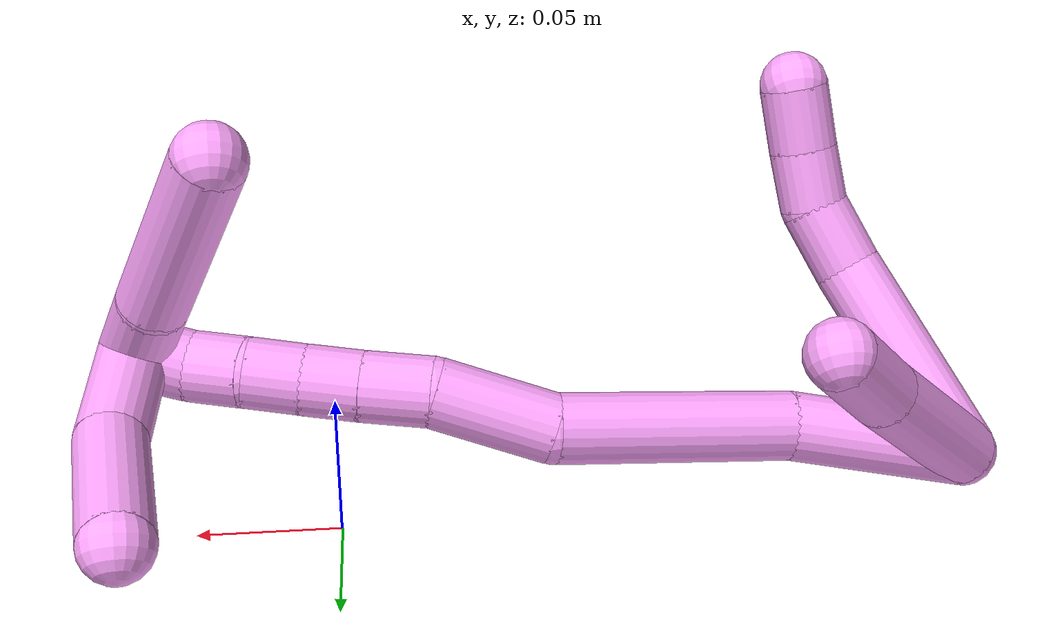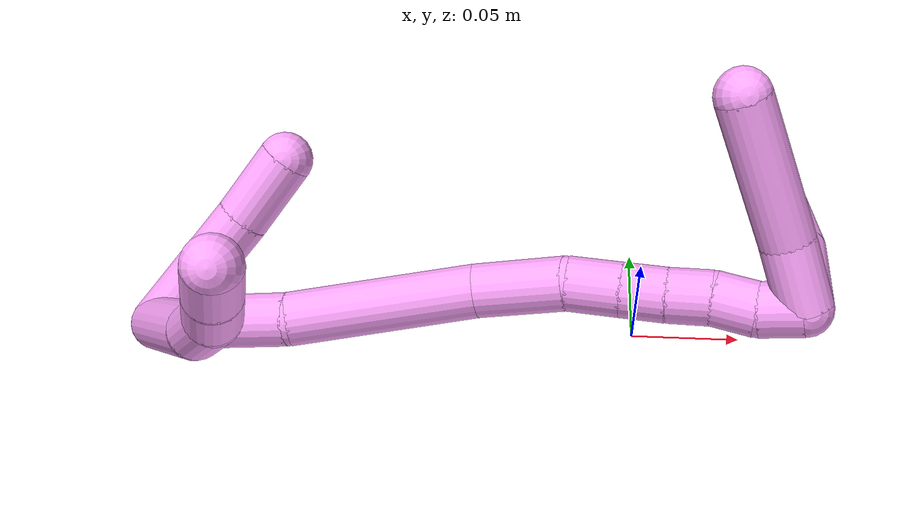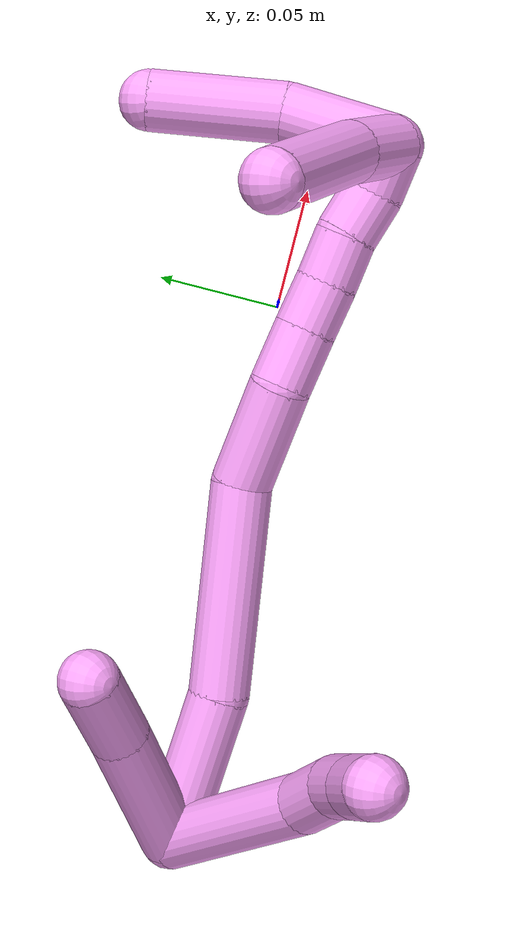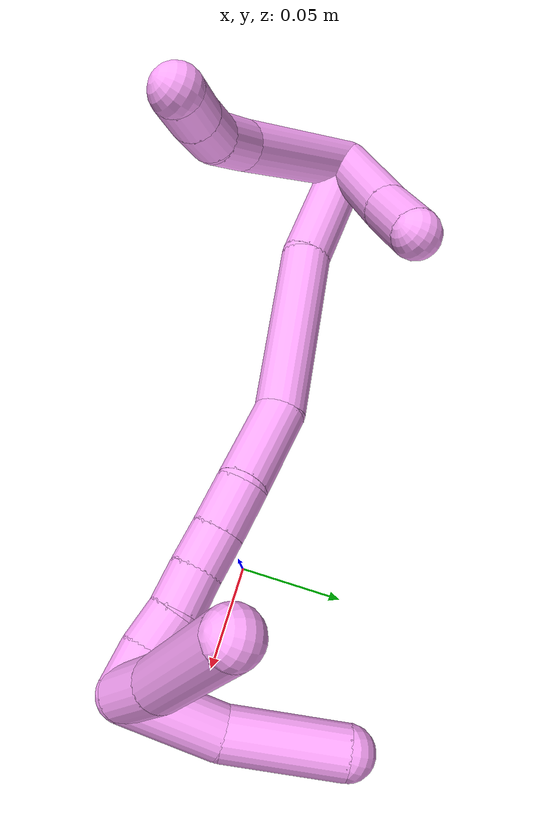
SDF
<sdf version="1.7">
 <world name="default">
  <model name="4">
   <static>0</static>
   <link name="4">
    <collision name="collision-cylinder-e_1_2_8">
     <pose>0.015557 0.003464 0.035913 -0.096155 0.407102 -0.019862</pose>
     <geometry><cylinder><radius>0.0125</radius><length>0.078581</length></cylinder></geometry>
     <surface>
      <friction><ode><mu>1.16</mu><mu2>1.16</mu2><slip1>0</slip1><slip2>0</slip2></ode></friction>
      <contact><ode><kp>1e+06</kp><kd>1</kd><max_vel>0</max_vel><min_depth>0.001</min_depth></ode></contact>
     </surface>
    </collision>
    <visual name="visual-cylinder-e_1_2_8">
     <pose>0.015557 0.003464 0.035913 -0.096155 0.407102 -0.019862</pose>
     <geometry><cylinder><radius>0.0125</radius><length>0.078581</length></cylinder></geometry>
     <material><ambient>1 0.65098 0.996078 1</ambient></material>
    </visual>
    <collision name="collision-cylinder-e_2_8_9">
     <pose>0.036786 0.01127 0.082731 -0.378896 0.450136 -0.087744</pose>
     <geometry><cylinder><radius>0.0125</radius><length>0.026074</length></cylinder></geometry>
     <surface>
      <friction><ode><mu>1.16</mu><mu2>1.16</mu2><slip1>0</slip1><slip2>0</slip2></ode></friction>
      <contact><ode><kp>1e+06</kp><kd>1</kd><max_vel>0</max_vel><min_depth>0.001</min_depth></ode></contact>
     </surface>
    </collision>
    <visual name="visual-cylinder-e_2_8_9">
     <pose>0.036786 0.01127 0.082731 -0.378896 0.450136 -0.087744</pose>
     <geometry><cylinder><radius>0.0125</radius><length>0.026074</length></cylinder></geometry>
     <material><ambient>1 0.65098 0.996078 1</ambient></material>
    </visual>
    <collision name="collision-cylinder-e_3_9_10">
     <pose>0.044397 0.021308 0.102794 -0.556454 0.177885 -0.050934</pose>
     <geometry><cylinder><radius>0.0125</radius><length>0.021915</length></cylinder></geometry>
     <surface>
      <friction><ode><mu>1.16</mu><mu2>1.16</mu2><slip1>0</slip1><slip2>0</slip2></ode></friction>
      <contact><ode><kp>1e+06</kp><kd>1</kd><max_vel>0</max_vel><min_depth>0.001</min_depth></ode></contact>
     </surface>
    </collision>
    <visual name="visual-cylinder-e_3_9_10">
     <pose>0.044397 0.021308 0.102794 -0.556454 0.177885 -0.050934</pose>
     <geometry><cylinder><radius>0.0125</radius><length>0.021915</length></cylinder></geometry>
     <material><ambient>1 0.65098 0.996078 1</ambient></material>
    </visual>
    <collision name="collision-cylinder-e_4_10_6">
     <pose>0.048281 0.033888 0.12123 -0.638332 0.166758 -0.055221</pose>
     <geometry><cylinder><radius>0.0125</radius><length>0.023431</length></cylinder></geometry>
     <surface>
      <friction><ode><mu>1.16</mu><mu2>1.16</mu2><slip1>0</slip1><slip2>0</slip2></ode></friction>
      <contact><ode><kp>1e+06</kp><kd>1</kd><max_vel>0</max_vel><min_depth>0.001</min_depth></ode></contact>
     </surface>
    </collision>
    <visual name="visual-cylinder-e_4_10_6">
     <pose>0.048281 0.033888 0.12123 -0.638332 0.166758 -0.055221</pose>
     <geometry><cylinder><radius>0.0125</radius><length>0.023431</length></cylinder></geometry>
     <material><ambient>1 0.65098 0.996078 1</ambient></material>
    </visual>
    <collision name="collision-cylinder-e_1_2_11">
     <pose>0.022093 0.024066 0.003744 -1.41645 0.736729 -0.638531</pose>
     <geometry><cylinder><radius>0.0125</radius><length>0.065765</length></cylinder></geometry>
     <surface>
      <friction><ode><mu>1.16</mu><mu2>1.16</mu2><slip1>0</slip1><slip2>0</slip2></ode></friction>
      <contact><ode><kp>1e+06</kp><kd>1</kd><max_vel>0</max_vel><min_depth>0.001</min_depth></ode></contact>
     </surface>
    </collision>
    <visual name="visual-cylinder-e_1_2_11">
     <pose>0.022093 0.024066 0.003744 -1.41645 0.736729 -0.638531</pose>
     <geometry><cylinder><radius>0.0125</radius><length>0.065765</length></cylinder></geometry>
     <material><ambient>1 0.65098 0.996078 1</ambient></material>
    </visual>
    <collision name="collision-cylinder-e_2_11_5">
     <pose>0.055071 0.061155 0.009702 -1.40244 0.68918 -0.588512</pose>
     <geometry><cylinder><radius>0.0125</radius><length>0.034235</length></cylinder></geometry>
     <surface>
      <friction><ode><mu>1.16</mu><mu2>1.16</mu2><slip1>0</slip1><slip2>0</slip2></ode></friction>
      <contact><ode><kp>1e+06</kp><kd>1</kd><max_vel>0</max_vel><min_depth>0.001</min_depth></ode></contact>
     </surface>
    </collision>
    <visual name="visual-cylinder-e_2_11_5">
     <pose>0.055071 0.061155 0.009702 -1.40244 0.68918 -0.588512</pose>
     <geometry><cylinder><radius>0.0125</radius><length>0.034235</length></cylinder></geometry>
     <material><ambient>1 0.65098 0.996078 1</ambient></material>
    </visual>
    <collision name="collision-cylinder-e_1_2_12">
     <pose>0.031466 0.000447 0.007155 -0.062407 1.34678 -0.049793</pose>
     <geometry><cylinder><radius>0.0125</radius><length>0.064546</length></cylinder></geometry>
     <surface>
      <friction><ode><mu>1.16</mu><mu2>1.16</mu2><slip1>0</slip1><slip2>0</slip2></ode></friction>
      <contact><ode><kp>1e+06</kp><kd>1</kd><max_vel>0</max_vel><min_depth>0.001</min_depth></ode></contact>
     </surface>
    </collision>
    <visual name="visual-cylinder-e_1_2_12">
     <pose>0.031466 0.000447 0.007155 -0.062407 1.34678 -0.049793</pose>
     <geometry><cylinder><radius>0.0125</radius><length>0.064546</length></cylinder></geometry>
     <material><ambient>1 0.65098 0.996078 1</ambient></material>
    </visual>
    <collision name="collision-cylinder-e_2_12_13">
     <pose>0.106324 0.00547 0.015455 -1.32574 1.46252 -1.22206</pose>
     <geometry><cylinder><radius>0.0125</radius><length>0.087293</length></cylinder></geometry>
     <surface>
      <friction><ode><mu>1.16</mu><mu2>1.16</mu2><slip1>0</slip1><slip2>0</slip2></ode></friction>
      <contact><ode><kp>1e+06</kp><kd>1</kd><max_vel>0</max_vel><min_depth>0.001</min_depth></ode></contact>
     </surface>
    </collision>
    <visual name="visual-cylinder-e_2_12_13">
     <pose>0.106324 0.00547 0.015455 -1.32574 1.46252 -1.22206</pose>
     <geometry><cylinder><radius>0.0125</radius><length>0.087293</length></cylinder></geometry>
     <material><ambient>1 0.65098 0.996078 1</ambient></material>
    </visual>
    <collision name="collision-cylinder-e_3_13_14">
     <pose>0.169966 0.011805 0.024193 -0.22776 1.20337 -0.156741</pose>
     <geometry><cylinder><radius>0.0125</radius><length>0.043398</length></cylinder></geometry>
     <surface>
      <friction><ode><mu>1.16</mu><mu2>1.16</mu2><slip1>0</slip1><slip2>0</slip2></ode></friction>
      <contact><ode><kp>1e+06</kp><kd>1</kd><max_vel>0</max_vel><min_depth>0.001</min_depth></ode></contact>
     </surface>
    </collision>
    <visual name="visual-cylinder-e_3_13_14">
     <pose>0.169966 0.011805 0.024193 -0.22776 1.20337 -0.156741</pose>
     <geometry><cylinder><radius>0.0125</radius><length>0.043398</length></cylinder></geometry>
     <material><ambient>1 0.65098 0.996078 1</ambient></material>
    </visual>
    <collision name="collision-cylinder-e_4_14_15">
     <pose>0.202046 0.01187 0.034413 0.573125 1.3124 0.446262</pose>
     <geometry><cylinder><radius>0.0125</radius><length>0.024471</length></cylinder></geometry>
     <surface>
      <friction><ode><mu>1.16</mu><mu2>1.16</mu2><slip1>0</slip1><slip2>0</slip2></ode></friction>
      <contact><ode><kp>1e+06</kp><kd>1</kd><max_vel>0</max_vel><min_depth>0.001</min_depth></ode></contact>
     </surface>
    </collision>
    <visual name="visual-cylinder-e_4_14_15">
     <pose>0.202046 0.01187 0.034413 0.573125 1.3124 0.446262</pose>
     <geometry><cylinder><radius>0.0125</radius><length>0.024471</length></cylinder></geometry>
     <material><ambient>1 0.65098 0.996078 1</ambient></material>
    </visual>
    <collision name="collision-cylinder-e_5_15_16">
     <pose>0.223598 0.008852 0.039498 0.49361 1.29119 0.375103</pose>
     <geometry><cylinder><radius>0.0125</radius><length>0.020231</length></cylinder></geometry>
     <surface>
      <friction><ode><mu>1.16</mu><mu2>1.16</mu2><slip1>0</slip1><slip2>0</slip2></ode></friction>
      <contact><ode><kp>1e+06</kp><kd>1</kd><max_vel>0</max_vel><min_depth>0.001</min_depth></ode></contact>
     </surface>
    </collision>
    <visual name="visual-cylinder-e_5_15_16">
     <pose>0.223598 0.008852 0.039498 0.49361 1.29119 0.375103</pose>
     <geometry><cylinder><radius>0.0125</radius><length>0.020231</length></cylinder></geometry>
     <material><ambient>1 0.65098 0.996078 1</ambient></material>
    </visual>
    <collision name="collision-cylinder-e_6_16_17">
     <pose>0.243011 0.006755 0.044332 0.315236 1.31849 0.245084</pose>
     <geometry><cylinder><radius>0.0125</radius><length>0.020015</length></cylinder></geometry>
     <surface>
      <friction><ode><mu>1.16</mu><mu2>1.16</mu2><slip1>0</slip1><slip2>0</slip2></ode></friction>
      <contact><ode><kp>1e+06</kp><kd>1</kd><max_vel>0</max_vel><min_depth>0.001</min_depth></ode></contact>
     </surface>
    </collision>
    <visual name="visual-cylinder-e_6_16_17">
     <pose>0.243011 0.006755 0.044332 0.315236 1.31849 0.245084</pose>
     <geometry><cylinder><radius>0.0125</radius><length>0.020015</length></cylinder></geometry>
     <material><ambient>1 0.65098 0.996078 1</ambient></material>
    </visual>
    <collision name="collision-cylinder-e_7_17_18">
     <pose>0.261913 0.00338 0.049608 0.730765 1.1706 0.496633</pose>
     <geometry><cylinder><radius>0.0125</radius><length>0.020003</length></cylinder></geometry>
     <surface>
      <friction><ode><mu>1.16</mu><mu2>1.16</mu2><slip1>0</slip1><slip2>0</slip2></ode></friction>
      <contact><ode><kp>1e+06</kp><kd>1</kd><max_vel>0</max_vel><min_depth>0.001</min_depth></ode></contact>
     </surface>
    </collision>
    <visual name="visual-cylinder-e_7_17_18">
     <pose>0.261913 0.00338 0.049608 0.730765 1.1706 0.496633</pose>
     <geometry><cylinder><radius>0.0125</radius><length>0.020003</length></cylinder></geometry>
     <material><ambient>1 0.65098 0.996078 1</ambient></material>
    </visual>
    <collision name="collision-cylinder-e_8_18_1">
     <pose>0.280631 0.000974 0.055674 -0.061586 1.249 -0.044393</pose>
     <geometry><cylinder><radius>0.0125</radius><length>0.020043</length></cylinder></geometry>
     <surface>
      <friction><ode><mu>1.16</mu><mu2>1.16</mu2><slip1>0</slip1><slip2>0</slip2></ode></friction>
      <contact><ode><kp>1e+06</kp><kd>1</kd><max_vel>0</max_vel><min_depth>0.001</min_depth></ode></contact>
     </surface>
    </collision>
    <visual name="visual-cylinder-e_8_18_1">
     <pose>0.280631 0.000974 0.055674 -0.061586 1.249 -0.044393</pose>
     <geometry><cylinder><radius>0.0125</radius><length>0.020043</length></cylinder></geometry>
     <material><ambient>1 0.65098 0.996078 1</ambient></material>
    </visual>
    <collision name="collision-cylinder-e_1_1_19">
     <pose>0.293875 0.011407 0.039164 -2.66176 0.166933 -0.659045</pose>
     <geometry><cylinder><radius>0.0125</radius><length>0.04498</length></cylinder></geometry>
     <surface>
      <friction><ode><mu>1.16</mu><mu2>1.16</mu2><slip1>0</slip1><slip2>0</slip2></ode></friction>
      <contact><ode><kp>1e+06</kp><kd>1</kd><max_vel>0</max_vel><min_depth>0.001</min_depth></ode></contact>
     </surface>
    </collision>
    <visual name="visual-cylinder-e_1_1_19">
     <pose>0.293875 0.011407 0.039164 -2.66176 0.166933 -0.659045</pose>
     <geometry><cylinder><radius>0.0125</radius><length>0.04498</length></cylinder></geometry>
     <material><ambient>1 0.65098 0.996078 1</ambient></material>
    </visual>
    <collision name="collision-cylinder-e_2_19_4">
     <pose>0.296182 0.037833 -0.002705 -2.51146 -0.052008 0.159271</pose>
     <geometry><cylinder><radius>0.0125</radius><length>0.05502</length></cylinder></geometry>
     <surface>
      <friction><ode><mu>1.16</mu><mu2>1.16</mu2><slip1>0</slip1><slip2>0</slip2></ode></friction>
      <contact><ode><kp>1e+06</kp><kd>1</kd><max_vel>0</max_vel><min_depth>0.001</min_depth></ode></contact>
     </surface>
    </collision>
    <visual name="visual-cylinder-e_2_19_4">
     <pose>0.296182 0.037833 -0.002705 -2.51146 -0.052008 0.159271</pose>
     <geometry><cylinder><radius>0.0125</radius><length>0.05502</length></cylinder></geometry>
     <material><ambient>1 0.65098 0.996078 1</ambient></material>
    </visual>
    <collision name="collision-cylinder-e_1_1_20">
     <pose>0.285994 0.016255 0.061156 -1.4183 -0.265111 0.227831</pose>
     <geometry><cylinder><radius>0.0125</radius><length>0.031632</length></cylinder></geometry>
     <surface>
      <friction><ode><mu>1.16</mu><mu2>1.16</mu2><slip1>0</slip1><slip2>0</slip2></ode></friction>
      <contact><ode><kp>1e+06</kp><kd>1</kd><max_vel>0</max_vel><min_depth>0.001</min_depth></ode></contact>
     </surface>
    </collision>
    <visual name="visual-cylinder-e_1_1_20">
     <pose>0.285994 0.016255 0.061156 -1.4183 -0.265111 0.227831</pose>
     <geometry><cylinder><radius>0.0125</radius><length>0.031632</length></cylinder></geometry>
     <material><ambient>1 0.65098 0.996078 1</ambient></material>
    </visual>
    <collision name="collision-cylinder-e_2_20_3">
     <pose>0.271176 0.06243 0.07286 -1.27758 -0.317579 0.236745</pose>
     <geometry><cylinder><radius>0.0125</radius><length>0.068368</length></cylinder></geometry>
     <surface>
      <friction><ode><mu>1.16</mu><mu2>1.16</mu2><slip1>0</slip1><slip2>0</slip2></ode></friction>
      <contact><ode><kp>1e+06</kp><kd>1</kd><max_vel>0</max_vel><min_depth>0.001</min_depth></ode></contact>
     </surface>
    </collision>
    <visual name="visual-cylinder-e_2_20_3">
     <pose>0.271176 0.06243 0.07286 -1.27758 -0.317579 0.236745</pose>
     <geometry><cylinder><radius>0.0125</radius><length>0.068368</length></cylinder></geometry>
     <material><ambient>1 0.65098 0.996078 1</ambient></material>
    </visual>
    <collision name="collision-sphere-3">
     <pose>0.260501 0.093519 0.082247 0 -0 0</pose>
     <geometry><sphere><radius>0.0125</radius></sphere></geometry>
     <surface>
      <friction><ode><mu>1.16</mu><mu2>1.16</mu2><slip1>0</slip1><slip2>0</slip2></ode></friction>
      <contact><ode><kp>1e+06</kp><kd>1</kd><max_vel>0</max_vel><min_depth>0.001</min_depth></ode></contact>
     </surface>
    </collision>
    <visual name="visual-sphere-3">
     <pose>0.260501 0.093519 0.082247 0 -0 0</pose>
     <geometry><sphere><radius>0.0125</radius></sphere></geometry>
     <material><ambient>1 0.65098 0.996078 1</ambient></material>
    </visual>
    <collision name="collision-sphere-20">
     <pose>0.28185 0.031342 0.063474 0 -0 0</pose>
     <geometry><sphere><radius>0.0125</radius></sphere></geometry>
     <surface>
      <friction><ode><mu>1.16</mu><mu2>1.16</mu2><slip1>0</slip1><slip2>0</slip2></ode></friction>
      <contact><ode><kp>1e+06</kp><kd>1</kd><max_vel>0</max_vel><min_depth>0.001</min_depth></ode></contact>
     </surface>
    </collision>
    <visual name="visual-sphere-20">
     <pose>0.28185 0.031342 0.063474 0 -0 0</pose>
     <geometry><sphere><radius>0.0125</radius></sphere></geometry>
     <material><ambient>1 0.65098 0.996078 1</ambient></material>
    </visual>
    <collision name="collision-sphere-4">
     <pose>0.294752 0.054021 -0.024902 0 -0 0</pose>
     <geometry><sphere><radius>0.0125</radius></sphere></geometry>
     <surface>
      <friction><ode><mu>1.16</mu><mu2>1.16</mu2><slip1>0</slip1><slip2>0</slip2></ode></friction>
      <contact><ode><kp>1e+06</kp><kd>1</kd><max_vel>0</max_vel><min_depth>0.001</min_depth></ode></contact>
     </surface>
    </collision>
    <visual name="visual-sphere-4">
     <pose>0.294752 0.054021 -0.024902 0 -0 0</pose>
     <geometry><sphere><radius>0.0125</radius></sphere></geometry>
     <material><ambient>1 0.65098 0.996078 1</ambient></material>
    </visual>
    <collision name="collision-sphere-11">
     <pose>0.044185 0.048131 0.007488 0 -0 0</pose>
     <geometry><sphere><radius>0.0125</radius></sphere></geometry>
     <surface>
      <friction><ode><mu>1.16</mu><mu2>1.16</mu2><slip1>0</slip1><slip2>0</slip2></ode></friction>
      <contact><ode><kp>1e+06</kp><kd>1</kd><max_vel>0</max_vel><min_depth>0.001</min_depth></ode></contact>
     </surface>
    </collision>
    <visual name="visual-sphere-11">
     <pose>0.044185 0.048131 0.007488 0 -0 0</pose>
     <geometry><sphere><radius>0.0125</radius></sphere></geometry>
     <material><ambient>1 0.65098 0.996078 1</ambient></material>
    </visual>
    <collision name="collision-sphere-6">
     <pose>0.050225 0.040771 0.130507 0 -0 0</pose>
     <geometry><sphere><radius>0.0125</radius></sphere></geometry>
     <surface>
      <friction><ode><mu>1.16</mu><mu2>1.16</mu2><slip1>0</slip1><slip2>0</slip2></ode></friction>
      <contact><ode><kp>1e+06</kp><kd>1</kd><max_vel>0</max_vel><min_depth>0.001</min_depth></ode></contact>
     </surface>
    </collision>
    <visual name="visual-sphere-6">
     <pose>0.050225 0.040771 0.130507 0 -0 0</pose>
     <geometry><sphere><radius>0.0125</radius></sphere></geometry>
     <material><ambient>1 0.65098 0.996078 1</ambient></material>
    </visual>
    <collision name="collision-sphere-10">
     <pose>0.046336 0.027004 0.111952 0 -0 0</pose>
     <geometry><sphere><radius>0.0125</radius></sphere></geometry>
     <surface>
      <friction><ode><mu>1.16</mu><mu2>1.16</mu2><slip1>0</slip1><slip2>0</slip2></ode></friction>
      <contact><ode><kp>1e+06</kp><kd>1</kd><max_vel>0</max_vel><min_depth>0.001</min_depth></ode></contact>
     </surface>
    </collision>
    <visual name="visual-sphere-10">
     <pose>0.046336 0.027004 0.111952 0 -0 0</pose>
     <geometry><sphere><radius>0.0125</radius></sphere></geometry>
     <material><ambient>1 0.65098 0.996078 1</ambient></material>
    </visual>
    <collision name="collision-sphere-9">
     <pose>0.042458 0.015612 0.093637 0 -0 0</pose>
     <geometry><sphere><radius>0.0125</radius></sphere></geometry>
     <surface>
      <friction><ode><mu>1.16</mu><mu2>1.16</mu2><slip1>0</slip1><slip2>0</slip2></ode></friction>
      <contact><ode><kp>1e+06</kp><kd>1</kd><max_vel>0</max_vel><min_depth>0.001</min_depth></ode></contact>
     </surface>
    </collision>
    <visual name="visual-sphere-9">
     <pose>0.042458 0.015612 0.093637 0 -0 0</pose>
     <geometry><sphere><radius>0.0125</radius></sphere></geometry>
     <material><ambient>1 0.65098 0.996078 1</ambient></material>
    </visual>
    <collision name="collision-sphere-2">
     <geometry><sphere><radius>0.0125</radius></sphere></geometry>
     <surface>
      <friction><ode><mu>1.16</mu><mu2>1.16</mu2><slip1>0</slip1><slip2>0</slip2></ode></friction>
      <contact><ode><kp>1e+06</kp><kd>1</kd><max_vel>0</max_vel><min_depth>0.001</min_depth></ode></contact>
     </surface>
    </collision>
    <visual name="visual-sphere-2">
     <geometry><sphere><radius>0.0125</radius></sphere></geometry>
     <material><ambient>1 0.65098 0.996078 1</ambient></material>
    </visual>
    <collision name="collision-sphere-19">
     <pose>0.297612 0.021644 0.019491 0 -0 0</pose>
     <geometry><sphere><radius>0.0125</radius></sphere></geometry>
     <surface>
      <friction><ode><mu>1.16</mu><mu2>1.16</mu2><slip1>0</slip1><slip2>0</slip2></ode></friction>
      <contact><ode><kp>1e+06</kp><kd>1</kd><max_vel>0</max_vel><min_depth>0.001</min_depth></ode></contact>
     </surface>
    </collision>
    <visual name="visual-sphere-19">
     <pose>0.297612 0.021644 0.019491 0 -0 0</pose>
     <geometry><sphere><radius>0.0125</radius></sphere></geometry>
     <material><ambient>1 0.65098 0.996078 1</ambient></material>
    </visual>
    <collision name="collision-sphere-8">
     <pose>0.031114 0.006928 0.071825 0 -0 0</pose>
     <geometry><sphere><radius>0.0125</radius></sphere></geometry>
     <surface>
      <friction><ode><mu>1.16</mu><mu2>1.16</mu2><slip1>0</slip1><slip2>0</slip2></ode></friction>
      <contact><ode><kp>1e+06</kp><kd>1</kd><max_vel>0</max_vel><min_depth>0.001</min_depth></ode></contact>
     </surface>
    </collision>
    <visual name="visual-sphere-8">
     <pose>0.031114 0.006928 0.071825 0 -0 0</pose>
     <geometry><sphere><radius>0.0125</radius></sphere></geometry>
     <material><ambient>1 0.65098 0.996078 1</ambient></material>
    </visual>
    <collision name="collision-sphere-5">
     <pose>0.065956 0.074179 0.011916 0 -0 0</pose>
     <geometry><sphere><radius>0.0125</radius></sphere></geometry>
     <surface>
      <friction><ode><mu>1.16</mu><mu2>1.16</mu2><slip1>0</slip1><slip2>0</slip2></ode></friction>
      <contact><ode><kp>1e+06</kp><kd>1</kd><max_vel>0</max_vel><min_depth>0.001</min_depth></ode></contact>
     </surface>
    </collision>
    <visual name="visual-sphere-5">
     <pose>0.065956 0.074179 0.011916 0 -0 0</pose>
     <geometry><sphere><radius>0.0125</radius></sphere></geometry>
     <material><ambient>1 0.65098 0.996078 1</ambient></material>
    </visual>
    <collision name="collision-sphere-12">
     <pose>0.062933 0.000894 0.014311 0 -0 0</pose>
     <geometry><sphere><radius>0.0125</radius></sphere></geometry>
     <surface>
      <friction><ode><mu>1.16</mu><mu2>1.16</mu2><slip1>0</slip1><slip2>0</slip2></ode></friction>
      <contact><ode><kp>1e+06</kp><kd>1</kd><max_vel>0</max_vel><min_depth>0.001</min_depth></ode></contact>
     </surface>
    </collision>
    <visual name="visual-sphere-12">
     <pose>0.062933 0.000894 0.014311 0 -0 0</pose>
     <geometry><sphere><radius>0.0125</radius></sphere></geometry>
     <material><ambient>1 0.65098 0.996078 1</ambient></material>
    </visual>
    <collision name="collision-sphere-13">
     <pose>0.149715 0.010045 0.016599 0 -0 0</pose>
     <geometry><sphere><radius>0.0125</radius></sphere></geometry>
     <surface>
      <friction><ode><mu>1.16</mu><mu2>1.16</mu2><slip1>0</slip1><slip2>0</slip2></ode></friction>
      <contact><ode><kp>1e+06</kp><kd>1</kd><max_vel>0</max_vel><min_depth>0.001</min_depth></ode></contact>
     </surface>
    </collision>
    <visual name="visual-sphere-13">
     <pose>0.149715 0.010045 0.016599 0 -0 0</pose>
     <geometry><sphere><radius>0.0125</radius></sphere></geometry>
     <material><ambient>1 0.65098 0.996078 1</ambient></material>
    </visual>
    <collision name="collision-sphere-14">
     <pose>0.190217 0.013566 0.031786 0 -0 0</pose>
     <geometry><sphere><radius>0.0125</radius></sphere></geometry>
     <surface>
      <friction><ode><mu>1.16</mu><mu2>1.16</mu2><slip1>0</slip1><slip2>0</slip2></ode></friction>
      <contact><ode><kp>1e+06</kp><kd>1</kd><max_vel>0</max_vel><min_depth>0.001</min_depth></ode></contact>
     </surface>
    </collision>
    <visual name="visual-sphere-14">
     <pose>0.190217 0.013566 0.031786 0 -0 0</pose>
     <geometry><sphere><radius>0.0125</radius></sphere></geometry>
     <material><ambient>1 0.65098 0.996078 1</ambient></material>
    </visual>
    <collision name="collision-sphere-15">
     <pose>0.213875 0.010175 0.03704 0 -0 0</pose>
     <geometry><sphere><radius>0.0125</radius></sphere></geometry>
     <surface>
      <friction><ode><mu>1.16</mu><mu2>1.16</mu2><slip1>0</slip1><slip2>0</slip2></ode></friction>
      <contact><ode><kp>1e+06</kp><kd>1</kd><max_vel>0</max_vel><min_depth>0.001</min_depth></ode></contact>
     </surface>
    </collision>
    <visual name="visual-sphere-15">
     <pose>0.213875 0.010175 0.03704 0 -0 0</pose>
     <geometry><sphere><radius>0.0125</radius></sphere></geometry>
     <material><ambient>1 0.65098 0.996078 1</ambient></material>
    </visual>
    <collision name="collision-sphere-16">
     <pose>0.233321 0.007529 0.041957 0 -0 0</pose>
     <geometry><sphere><radius>0.0125</radius></sphere></geometry>
     <surface>
      <friction><ode><mu>1.16</mu><mu2>1.16</mu2><slip1>0</slip1><slip2>0</slip2></ode></friction>
      <contact><ode><kp>1e+06</kp><kd>1</kd><max_vel>0</max_vel><min_depth>0.001</min_depth></ode></contact>
     </surface>
    </collision>
    <visual name="visual-sphere-16">
     <pose>0.233321 0.007529 0.041957 0 -0 0</pose>
     <geometry><sphere><radius>0.0125</radius></sphere></geometry>
     <material><ambient>1 0.65098 0.996078 1</ambient></material>
    </visual>
    <collision name="collision-sphere-17">
     <pose>0.252702 0.00598 0.046707 0 -0 0</pose>
     <geometry><sphere><radius>0.0125</radius></sphere></geometry>
     <surface>
      <friction><ode><mu>1.16</mu><mu2>1.16</mu2><slip1>0</slip1><slip2>0</slip2></ode></friction>
      <contact><ode><kp>1e+06</kp><kd>1</kd><max_vel>0</max_vel><min_depth>0.001</min_depth></ode></contact>
     </surface>
    </collision>
    <visual name="visual-sphere-17">
     <pose>0.252702 0.00598 0.046707 0 -0 0</pose>
     <geometry><sphere><radius>0.0125</radius></sphere></geometry>
     <material><ambient>1 0.65098 0.996078 1</ambient></material>
    </visual>
    <collision name="collision-sphere-18">
     <pose>0.271124 0.000779 0.05251 0 -0 0</pose>
     <geometry><sphere><radius>0.0125</radius></sphere></geometry>
     <surface>
      <friction><ode><mu>1.16</mu><mu2>1.16</mu2><slip1>0</slip1><slip2>0</slip2></ode></friction>
      <contact><ode><kp>1e+06</kp><kd>1</kd><max_vel>0</max_vel><min_depth>0.001</min_depth></ode></contact>
     </surface>
    </collision>
    <visual name="visual-sphere-18">
     <pose>0.271124 0.000779 0.05251 0 -0 0</pose>
     <geometry><sphere><radius>0.0125</radius></sphere></geometry>
     <material><ambient>1 0.65098 0.996078 1</ambient></material>
    </visual>
    <collision name="collision-sphere-1">
     <pose>0.290138 0.001169 0.058837 0 -0 0</pose>
     <geometry><sphere><radius>0.0125</radius></sphere></geometry>
     <surface>
      <friction><ode><mu>1.16</mu><mu2>1.16</mu2><slip1>0</slip1><slip2>0</slip2></ode></friction>
      <contact><ode><kp>1e+06</kp><kd>1</kd><max_vel>0</max_vel><min_depth>0.001</min_depth></ode></contact>
     </surface>
    </collision>
    <visual name="visual-sphere-1">
     <pose>0.290138 0.001169 0.058837 0 -0 0</pose>
     <geometry><sphere><radius>0.0125</radius></sphere></geometry>
     <material><ambient>1 0.65098 0.996078 1</ambient></material>
    </visual>
    <inertial>
     <pose>0.144812 0.019455 0.035569 0 -0 0</pose>
     <mass>0.75</mass>
     <inertia>
      <ixx>0.000144</ixx>
      <ixy>0</ixy>
      <ixz>0</ixz>
      <iyy>0.00016</iyy>
      <iyz>0</iyz>
      <izz>-0.000197</izz>
     </inertia>
    </inertial>
   </link>
   <pose>-0.223232 -0.01276 0.011869 0.84562 -0.02147 0.097192</pose>
  </model>
 </world>
</sdf>
